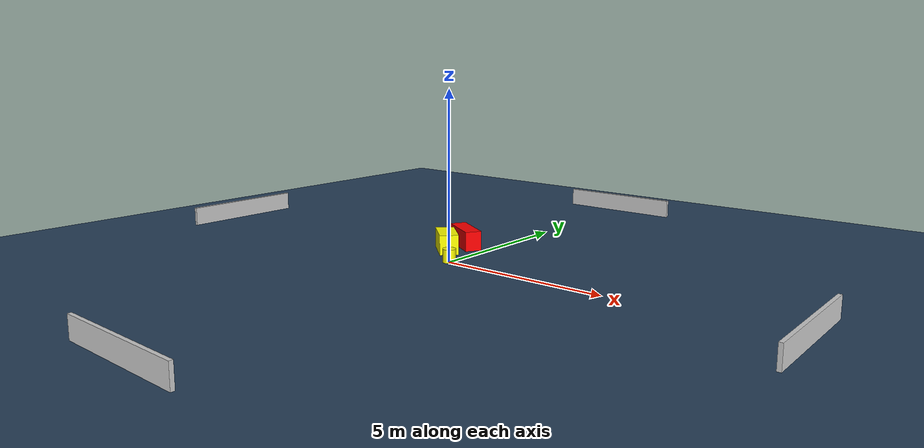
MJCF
<?xml version="1.0" ?>
<mujoco model="generated_environment">
  <option timestep="0.01" integrator="RK4" cone="elliptic"/>
  <default>
    <geom density="1"/>
  </default>
  <asset>
    <texture builtin="gradient" height="3072" name="skybox" rgb1="0.3 0.5 0.7" rgb2="0 0 0" type="skybox" width="512"/>
    <texture builtin="checker" height="300" name="groundplane" rgb1="0.2 0.3 0.4" rgb2="0.1 0.2 0.3" type="2d" width="300"/>
    <material name="groundplane" reflectance="0.2" texrepeat="5 5" texture="groundplane"/>
  </asset>
  <worldbody>
    <light dir="0 0 -1" directional="true" pos="0 0 1.5"/>
    <geom condim="3" friction="0.5 0.005 0.001" material="groundplane" name="floor" pos="0 0 0" size="0 0 0.05" type="plane"/>
    <body name="walls">
      <geom name="wall_1" condim="4" pos="-10.0 0.0 0.3" rgba="0.800000011920929 0.800000011920929 0.800000011920929 1.0" size="0.05 2.0 0.3" type="box"/>
      <geom name="wall_2" condim="4" pos="10.0 0.0 0.3" rgba="0.800000011920929 0.800000011920929 0.800000011920929 1.0" size="0.05 2.0 0.3" type="box"/>
      <geom name="wall_3" condim="4" pos="0.0 -10.0 0.3" rgba="0.800000011920929 0.800000011920929 0.800000011920929 1.0" size="2.0 0.05 0.3" type="box"/>
      <geom name="wall_4" condim="4" pos="0.0 10.0 0.3" rgba="0.800000011920929 0.800000011920929 0.800000011920929 1.0" size="2.0 0.05 0.3" type="box"/>
    </body>
    <body name="robot">
      <joint name="joint_x" type="slide" pos="0 0 0" axis="1 0 0"/>
      <joint name="joint_y" type="slide" pos="0 0 0" axis="0 1 0"/>
      <geom name="robot" type="cylinder" pos="0.0 0.0 0.2" size="0.2 0.2 0.0" mass="5.0" friction="1.0 0.005 0.0001" condim="4" rgba="1.0 1.0 0.0 1.0"/>
    </body>
    <body name="obstacle_1_movable">
      <geom name="obstacle_1_movable" condim="4" pos="-0.9471918032690215 0.996874089911396 0.3" euler="0 0 227.7192957352522" friction="0.0 0.005 0.001" rgba="1.0 1.0 0.0 1.0" size="0.2908638822237994 0.5803530133180492 0.3" type="box" mass="0.1"/>
      <joint type="free"/>
    </body>
    <body name="obstacle_2_static">
      <geom name="obstacle_2_static" condim="4" pos="-0.8608138916540476 1.7982742078270004 0.3" euler="0 0 239.77906938143423" friction="0.0 0.005 0.001" rgba="1.0 0.0 0.0 1.0" size="0.25343537510363684 0.6870299930064715 0.3" type="box"/>
    </body>
  </worldbody>
  <actuator>
    <motor name="actuator_x" joint="joint_x" gear="1" ctrlrange="-1 1"/>
    <motor name="actuator_y" joint="joint_y" gear="1" ctrlrange="-1 1"/>
  </actuator>
</mujoco>
